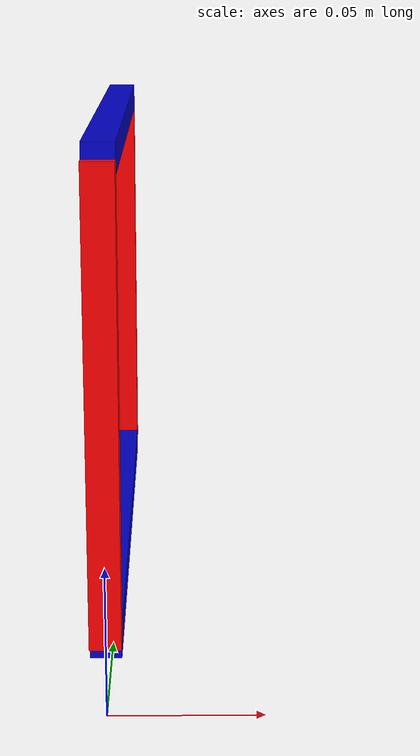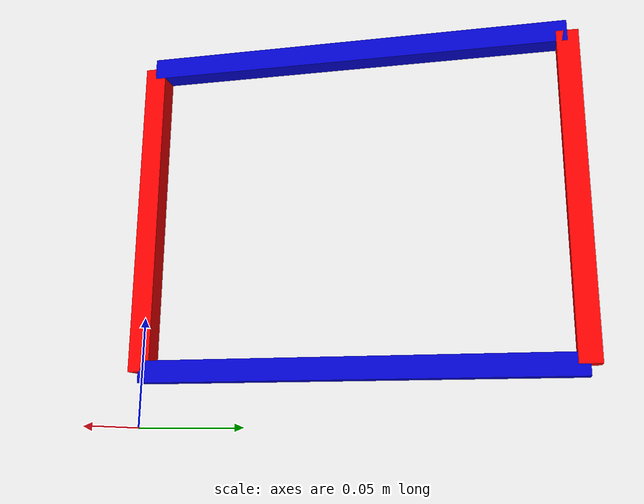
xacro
<?xml version="1.0" encoding="UTF-8"?>
<robot xmlns:xacro="http://www.ros.org/wiki/xacro" name="simple_closed_loop_mechanism">

    <xacro:property name="PI" value="3.142"/>
    <xacro:include filename="$(find simple_closed_loop_mechanism)/urdf/ros2_control.xacro"/>

    <link name="world"/>

    <joint name="world_joint" type="fixed">
        <parent link="world"/>
        <child link="Link1"/>
        <origin xyz="0.0 0.0 0.1" rpy="0.0 0.0 0.0"/>
    </joint>

    <link name="Link1">
        <inertial>
            <origin xyz="0.0 0.0 0.0" rpy="0.0 0.0 0.0"/>
            <mass value="0.12075"/>
            <inertia ixx="0.00022755" ixy="0.0" ixz="0.0" iyy="0.00022755" iyz="0.0" izz="0.0000020125"/>
        </inertial>
        <visual name="">
            <origin xyz="0.0 0.0 0.0" rpy="0.0 0.0 0.0"/>
            <geometry>
                <box size="0.01 0.01 0.15"/>
            </geometry>
            <material name="red">
                <color rgba="1.0 0.0 0.0 1.0"/>
            </material>
        </visual>
        <collision>
            <origin xyz="0.0 0.0 0.0" rpy="0.0 0.0 0.0"/>
            <geometry>
                <box size="0.01 0.01 0.15"/>
            </geometry>
        </collision>
    </link>

    <joint name="Joint1" type="revolute">
        <origin xyz="0.0 0.0 0.075" rpy="0.0 0.0 0.0"/>
        <parent link="Link1"/>
        <child link="Link2"/>
        <axis xyz="1.0 0.0 0.0"/>
        <limit lower="-3.142" upper="3.142" effort="10.0" velocity="10.0"/>
    </joint>

    <link name="Link2">
        <inertial>
            <origin xyz="0.0 0.10 0.0" rpy="0.0 0.0 0.0"/>
            <mass value="0.161"/>
            <inertia ixx="0.00053743" ixy="0.0" ixz="0.0" iyy="0.0000026833" iyz="0.0" izz="0.00053743"/>
        </inertial>

        <visual name="">
            <origin xyz="0.0 0.10 0.0" rpy="0.0 0.0 0.0"/>
            <geometry>
                <box size="0.01 0.20 0.01"/>
            </geometry>
            <material name="">
                <color rgba="0.0 0.0 0.8 1.0"/>
            </material>
        </visual>
        <collision>
            <origin xyz="0.0 0.10 0.0" rpy="0.0 0.0 0.0"/>
            <geometry>
                <box size="0.01 0.20 0.01"/>
            </geometry>
        </collision>
    </link>

    <joint name="Joint2" type="revolute">
        <origin xyz="0.0 0.20 0.0" rpy="0.0 0.0 0.0"/>
        <parent link="Link2"/>
        <child link="Link3"/>
        <axis xyz="1.0 0.0 0.0"/>
        <limit lower="-3.142" upper="3.142" effort="10.0" velocity="10.0"/>
    </joint>

    <link name="Link3">
        <inertial>
            <origin xyz="0.0 0.0 -0.075" rpy="0.0 0.0 0.0"/>
            <mass value="0.12075"/>
            <inertia ixx="0.00022755" ixy="0.0" ixz="0.0" iyy="0.00022755" iyz="0.0" izz="0.0000020125"/>
        </inertial>

        <visual name="">
            <origin xyz="0.0 0.0 -0.075" rpy="0.0 0.0 0.0"/>
            <geometry>
                <box size="0.01 0.01 -0.15"/>
            </geometry>
            <material name="">
                <color rgba="1.0 0.0 0.0 1.0"/>
                <texture filename=""/>
            </material>
        </visual>
        <collision>
            <origin xyz="0.0 0.0 -0.075" rpy="0.0 0.0 0.0"/>
            <geometry>
                <box size="0.01 0.01 -0.15"/>
            </geometry>
        </collision>
    </link>

    <joint name="Joint3" type="revolute">
        <parent link="Link3"/>
        <child link="Link4"/>
        <axis xyz="1.0 0 0"/>
        <limit lower="-3.14159" upper="3.14159" velocity="50.0" effort="1000.0"/>
        <origin xyz="0 0 -0.15" rpy="0 0 0"/>
    </joint>

    <link name="Link4">
        <inertial>
            <origin xyz="0.0 -0.10 0.0" rpy="0.0 0.0 0.0"/>
            <mass value="0.161"/>
            <inertia ixx="0.00053743" ixy="0.0" ixz="0.0" iyy="0.0000026833" iyz="0.0" izz="0.00053743"/>
        </inertial>

        <visual name="">
            <origin xyz="0.0 -0.10 0.0" rpy="0.0 0.0 0.0"/>
            <geometry>
                <box size="0.01 -0.20 0.01"/>
            </geometry>
            <material name="">
                <color rgba="0.0 0.0 0.8 1.0"/>
            </material>
        </visual>
        <collision>
            <origin xyz="0.0 -0.10 0.0" rpy="0.0 0.0 0.0"/>
            <geometry>
                <box size="0.01 -0.20 0.01"/>
            </geometry>
        </collision>
    </link>

    <gazebo>
        <joint name="Joint4_gz" type="revolute">
            <pose relative_to="Link4">0 -0.2 0 0 0 0</pose>
            <parent>Link4</parent>
            <child>Link1</child>
            <axis>
                <xyz>1 0 0</xyz>
            </axis>
            <limit>
                <lower>${-PI}</lower>
                <upper>${PI}</upper>
                <effort>10.0</effort>
                <velocity>10.0</velocity>
            </limit>
            <dynamics>
                <damping>10.0</damping>
                <friction>10.0</friction>
            </dynamics>

            <physics>
                <provide_feedback>true</provide_feedback>
            </physics>
        </joint>
    </gazebo>

</robot>
